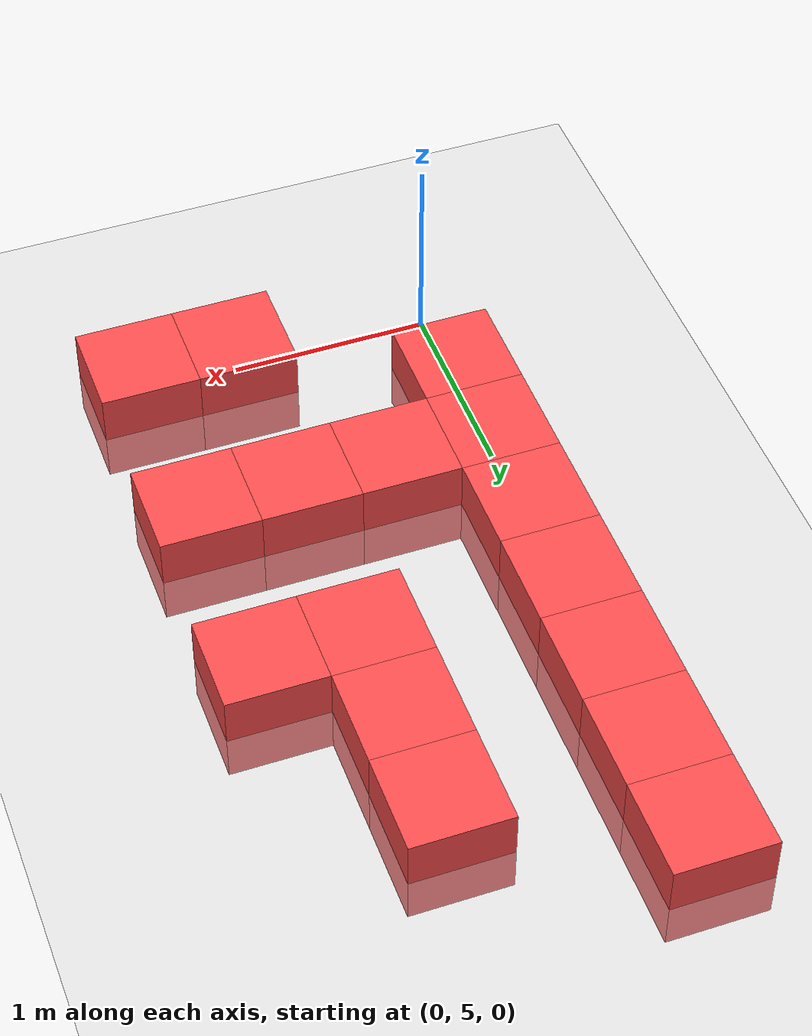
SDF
<sdf version="1.6">
 <world name="default">
  <model name="ground_plane">
   <static>1</static>
   <link name="link">
    <collision name="collision">
     <geometry><plane><normal>0 0 1</normal><size>100 100</size></plane></geometry>
     <surface><friction><ode><mu>100</mu><mu2>50</mu2></ode></friction></surface>
    </collision>
    <visual name="visual">
     <cast_shadows>0</cast_shadows>
     <geometry><plane><normal>0 0 1</normal><size>100 100</size></plane></geometry>
     <material>
      <script><uri>file://media/materials/scripts/gazebo.material</uri><name>Gazebo/Grey</name></script>
     </material>
    </visual>
   </link>
  </model>
  <model name="Box_Red_11">
   <link name="link_0">
    <inertial>
     <mass>1</mass>
     <inertia>
      <ixx>0.166667</ixx>
      <ixy>0</ixy>
      <ixz>0</ixz>
      <iyy>0.166667</iyy>
      <iyz>0</iyz>
      <izz>0.166667</izz>
     </inertia>
    </inertial>
    <visual name="visual">
     <geometry><box><size>0.5 0.5 0.5</size></box></geometry>
     <material>
      <lighting>1</lighting>
      <script><uri>file://media/materials/scripts/gazebo.material</uri><name>Gazebo/Grey</name></script>
      <ambient>1 0.3 0.3 1</ambient>
      <diffuse>0.7 0.7 0.7 1</diffuse>
      <specular>0.01 0.01 0.01 1</specular>
      <emissive>0 0 0 1</emissive>
      <shader type="vertex"><normal_map>__default__</normal_map></shader>
     </material>
    </visual>
    <collision name="collision">
     <geometry><box><size>0.5 0.5 0.5</size></box></geometry>
     <surface>
      <friction>
       <ode><mu>1</mu><mu2>1</mu2><fdir1>0 0 0</fdir1><slip1>0</slip1><slip2>0</slip2></ode>
       <torsional>
        <coefficient>1</coefficient>
        <patch_radius>0</patch_radius>
        <surface_radius>0</surface_radius>
        <use_patch_radius>1</use_patch_radius>
        <ode><slip>0</slip></ode>
       </torsional>
      </friction>
      <bounce><restitution_coefficient>0</restitution_coefficient><threshold>1e+06</threshold></bounce>
      <contact>
       <collide_without_contact>0</collide_without_contact>
       <collide_without_contact_bitmask>1</collide_without_contact_bitmask>
       <collide_bitmask>1</collide_bitmask>
       <ode>
        <soft_cfm>0</soft_cfm>
        <soft_erp>0.2</soft_erp>
        <kp>1e+13</kp>
        <kd>1</kd>
        <max_vel>0.01</max_vel>
        <min_depth>0</min_depth>
       </ode>
       <bullet>
        <split_impulse>1</split_impulse>
        <split_impulse_penetration_threshold>-0.01</split_impulse_penetration_threshold>
        <soft_cfm>0</soft_cfm>
        <soft_erp>0.2</soft_erp>
        <kp>1e+13</kp>
        <kd>1</kd>
       </bullet>
      </contact>
     </surface>
    </collision>
   </link>
   <static>0</static>
   <pose>0.000 5.500 0.000 0 0 0</pose>
  </model>
  <model name="Box_Red_12">
   <link name="link_0">
    <inertial>
     <mass>1</mass>
     <inertia>
      <ixx>0.166667</ixx>
      <ixy>0</ixy>
      <ixz>0</ixz>
      <iyy>0.166667</iyy>
      <iyz>0</iyz>
      <izz>0.166667</izz>
     </inertia>
    </inertial>
    <visual name="visual">
     <geometry><box><size>0.5 0.5 0.5</size></box></geometry>
     <material>
      <lighting>1</lighting>
      <script><uri>file://media/materials/scripts/gazebo.material</uri><name>Gazebo/Grey</name></script>
      <ambient>1 0.3 0.3 1</ambient>
      <diffuse>0.7 0.7 0.7 1</diffuse>
      <specular>0.01 0.01 0.01 1</specular>
      <emissive>0 0 0 1</emissive>
      <shader type="vertex"><normal_map>__default__</normal_map></shader>
     </material>
    </visual>
    <collision name="collision">
     <geometry><box><size>0.5 0.5 0.5</size></box></geometry>
     <surface>
      <friction>
       <ode><mu>1</mu><mu2>1</mu2><fdir1>0 0 0</fdir1><slip1>0</slip1><slip2>0</slip2></ode>
       <torsional>
        <coefficient>1</coefficient>
        <patch_radius>0</patch_radius>
        <surface_radius>0</surface_radius>
        <use_patch_radius>1</use_patch_radius>
        <ode><slip>0</slip></ode>
       </torsional>
      </friction>
      <bounce><restitution_coefficient>0</restitution_coefficient><threshold>1e+06</threshold></bounce>
      <contact>
       <collide_without_contact>0</collide_without_contact>
       <collide_without_contact_bitmask>1</collide_without_contact_bitmask>
       <collide_bitmask>1</collide_bitmask>
       <ode>
        <soft_cfm>0</soft_cfm>
        <soft_erp>0.2</soft_erp>
        <kp>1e+13</kp>
        <kd>1</kd>
        <max_vel>0.01</max_vel>
        <min_depth>0</min_depth>
       </ode>
       <bullet>
        <split_impulse>1</split_impulse>
        <split_impulse_penetration_threshold>-0.01</split_impulse_penetration_threshold>
        <soft_cfm>0</soft_cfm>
        <soft_erp>0.2</soft_erp>
        <kp>1e+13</kp>
        <kd>1</kd>
       </bullet>
      </contact>
     </surface>
    </collision>
   </link>
   <static>0</static>
   <pose>0.000 6.000 0.000 0 0 0</pose>
  </model>
  <model name="Box_Red_13">
   <link name="link_0">
    <inertial>
     <mass>1</mass>
     <inertia>
      <ixx>0.166667</ixx>
      <ixy>0</ixy>
      <ixz>0</ixz>
      <iyy>0.166667</iyy>
      <iyz>0</iyz>
      <izz>0.166667</izz>
     </inertia>
    </inertial>
    <visual name="visual">
     <geometry><box><size>0.5 0.5 0.5</size></box></geometry>
     <material>
      <lighting>1</lighting>
      <script><uri>file://media/materials/scripts/gazebo.material</uri><name>Gazebo/Grey</name></script>
      <ambient>1 0.3 0.3 1</ambient>
      <diffuse>0.7 0.7 0.7 1</diffuse>
      <specular>0.01 0.01 0.01 1</specular>
      <emissive>0 0 0 1</emissive>
      <shader type="vertex"><normal_map>__default__</normal_map></shader>
     </material>
    </visual>
    <collision name="collision">
     <geometry><box><size>0.5 0.5 0.5</size></box></geometry>
     <surface>
      <friction>
       <ode><mu>1</mu><mu2>1</mu2><fdir1>0 0 0</fdir1><slip1>0</slip1><slip2>0</slip2></ode>
       <torsional>
        <coefficient>1</coefficient>
        <patch_radius>0</patch_radius>
        <surface_radius>0</surface_radius>
        <use_patch_radius>1</use_patch_radius>
        <ode><slip>0</slip></ode>
       </torsional>
      </friction>
      <bounce><restitution_coefficient>0</restitution_coefficient><threshold>1e+06</threshold></bounce>
      <contact>
       <collide_without_contact>0</collide_without_contact>
       <collide_without_contact_bitmask>1</collide_without_contact_bitmask>
       <collide_bitmask>1</collide_bitmask>
       <ode>
        <soft_cfm>0</soft_cfm>
        <soft_erp>0.2</soft_erp>
        <kp>1e+13</kp>
        <kd>1</kd>
        <max_vel>0.01</max_vel>
        <min_depth>0</min_depth>
       </ode>
       <bullet>
        <split_impulse>1</split_impulse>
        <split_impulse_penetration_threshold>-0.01</split_impulse_penetration_threshold>
        <soft_cfm>0</soft_cfm>
        <soft_erp>0.2</soft_erp>
        <kp>1e+13</kp>
        <kd>1</kd>
       </bullet>
      </contact>
     </surface>
    </collision>
   </link>
   <static>0</static>
   <pose>0.000 6.500 0.000 0 0 0</pose>
  </model>
  <model name="Box_Red_14">
   <link name="link_0">
    <inertial>
     <mass>1</mass>
     <inertia>
      <ixx>0.166667</ixx>
      <ixy>0</ixy>
      <ixz>0</ixz>
      <iyy>0.166667</iyy>
      <iyz>0</iyz>
      <izz>0.166667</izz>
     </inertia>
    </inertial>
    <visual name="visual">
     <geometry><box><size>0.5 0.5 0.5</size></box></geometry>
     <material>
      <lighting>1</lighting>
      <script><uri>file://media/materials/scripts/gazebo.material</uri><name>Gazebo/Grey</name></script>
      <ambient>1 0.3 0.3 1</ambient>
      <diffuse>0.7 0.7 0.7 1</diffuse>
      <specular>0.01 0.01 0.01 1</specular>
      <emissive>0 0 0 1</emissive>
      <shader type="vertex"><normal_map>__default__</normal_map></shader>
     </material>
    </visual>
    <collision name="collision">
     <geometry><box><size>0.5 0.5 0.5</size></box></geometry>
     <surface>
      <friction>
       <ode><mu>1</mu><mu2>1</mu2><fdir1>0 0 0</fdir1><slip1>0</slip1><slip2>0</slip2></ode>
       <torsional>
        <coefficient>1</coefficient>
        <patch_radius>0</patch_radius>
        <surface_radius>0</surface_radius>
        <use_patch_radius>1</use_patch_radius>
        <ode><slip>0</slip></ode>
       </torsional>
      </friction>
      <bounce><restitution_coefficient>0</restitution_coefficient><threshold>1e+06</threshold></bounce>
      <contact>
       <collide_without_contact>0</collide_without_contact>
       <collide_without_contact_bitmask>1</collide_without_contact_bitmask>
       <collide_bitmask>1</collide_bitmask>
       <ode>
        <soft_cfm>0</soft_cfm>
        <soft_erp>0.2</soft_erp>
        <kp>1e+13</kp>
        <kd>1</kd>
        <max_vel>0.01</max_vel>
        <min_depth>0</min_depth>
       </ode>
       <bullet>
        <split_impulse>1</split_impulse>
        <split_impulse_penetration_threshold>-0.01</split_impulse_penetration_threshold>
        <soft_cfm>0</soft_cfm>
        <soft_erp>0.2</soft_erp>
        <kp>1e+13</kp>
        <kd>1</kd>
       </bullet>
      </contact>
     </surface>
    </collision>
   </link>
   <static>0</static>
   <pose>0.000 7.000 0.000 0 0 0</pose>
  </model>
  <model name="Box_Red_15">
   <link name="link_0">
    <inertial>
     <mass>1</mass>
     <inertia>
      <ixx>0.166667</ixx>
      <ixy>0</ixy>
      <ixz>0</ixz>
      <iyy>0.166667</iyy>
      <iyz>0</iyz>
      <izz>0.166667</izz>
     </inertia>
    </inertial>
    <visual name="visual">
     <geometry><box><size>0.5 0.5 0.5</size></box></geometry>
     <material>
      <lighting>1</lighting>
      <script><uri>file://media/materials/scripts/gazebo.material</uri><name>Gazebo/Grey</name></script>
      <ambient>1 0.3 0.3 1</ambient>
      <diffuse>0.7 0.7 0.7 1</diffuse>
      <specular>0.01 0.01 0.01 1</specular>
      <emissive>0 0 0 1</emissive>
      <shader type="vertex"><normal_map>__default__</normal_map></shader>
     </material>
    </visual>
    <collision name="collision">
     <geometry><box><size>0.5 0.5 0.5</size></box></geometry>
     <surface>
      <friction>
       <ode><mu>1</mu><mu2>1</mu2><fdir1>0 0 0</fdir1><slip1>0</slip1><slip2>0</slip2></ode>
       <torsional>
        <coefficient>1</coefficient>
        <patch_radius>0</patch_radius>
        <surface_radius>0</surface_radius>
        <use_patch_radius>1</use_patch_radius>
        <ode><slip>0</slip></ode>
       </torsional>
      </friction>
      <bounce><restitution_coefficient>0</restitution_coefficient><threshold>1e+06</threshold></bounce>
      <contact>
       <collide_without_contact>0</collide_without_contact>
       <collide_without_contact_bitmask>1</collide_without_contact_bitmask>
       <collide_bitmask>1</collide_bitmask>
       <ode>
        <soft_cfm>0</soft_cfm>
        <soft_erp>0.2</soft_erp>
        <kp>1e+13</kp>
        <kd>1</kd>
        <max_vel>0.01</max_vel>
        <min_depth>0</min_depth>
       </ode>
       <bullet>
        <split_impulse>1</split_impulse>
        <split_impulse_penetration_threshold>-0.01</split_impulse_penetration_threshold>
        <soft_cfm>0</soft_cfm>
        <soft_erp>0.2</soft_erp>
        <kp>1e+13</kp>
        <kd>1</kd>
       </bullet>
      </contact>
     </surface>
    </collision>
   </link>
   <static>0</static>
   <pose>0.000 7.500 0.000 0 0 0</pose>
  </model>
  <model name="Box_Red_16">
   <link name="link_0">
    <inertial>
     <mass>1</mass>
     <inertia>
      <ixx>0.166667</ixx>
      <ixy>0</ixy>
      <ixz>0</ixz>
      <iyy>0.166667</iyy>
      <iyz>0</iyz>
      <izz>0.166667</izz>
     </inertia>
    </inertial>
    <visual name="visual">
     <geometry><box><size>0.5 0.5 0.5</size></box></geometry>
     <material>
      <lighting>1</lighting>
      <script><uri>file://media/materials/scripts/gazebo.material</uri><name>Gazebo/Grey</name></script>
      <ambient>1 0.3 0.3 1</ambient>
      <diffuse>0.7 0.7 0.7 1</diffuse>
      <specular>0.01 0.01 0.01 1</specular>
      <emissive>0 0 0 1</emissive>
      <shader type="vertex"><normal_map>__default__</normal_map></shader>
     </material>
    </visual>
    <collision name="collision">
     <geometry><box><size>0.5 0.5 0.5</size></box></geometry>
     <surface>
      <friction>
       <ode><mu>1</mu><mu2>1</mu2><fdir1>0 0 0</fdir1><slip1>0</slip1><slip2>0</slip2></ode>
       <torsional>
        <coefficient>1</coefficient>
        <patch_radius>0</patch_radius>
        <surface_radius>0</surface_radius>
        <use_patch_radius>1</use_patch_radius>
        <ode><slip>0</slip></ode>
       </torsional>
      </friction>
      <bounce><restitution_coefficient>0</restitution_coefficient><threshold>1e+06</threshold></bounce>
      <contact>
       <collide_without_contact>0</collide_without_contact>
       <collide_without_contact_bitmask>1</collide_without_contact_bitmask>
       <collide_bitmask>1</collide_bitmask>
       <ode>
        <soft_cfm>0</soft_cfm>
        <soft_erp>0.2</soft_erp>
        <kp>1e+13</kp>
        <kd>1</kd>
        <max_vel>0.01</max_vel>
        <min_depth>0</min_depth>
       </ode>
       <bullet>
        <split_impulse>1</split_impulse>
        <split_impulse_penetration_threshold>-0.01</split_impulse_penetration_threshold>
        <soft_cfm>0</soft_cfm>
        <soft_erp>0.2</soft_erp>
        <kp>1e+13</kp>
        <kd>1</kd>
       </bullet>
      </contact>
     </surface>
    </collision>
   </link>
   <static>0</static>
   <pose>0.000 8.000 0.000 0 0 0</pose>
  </model>
  <model name="Box_Red_17">
   <link name="link_0">
    <inertial>
     <mass>1</mass>
     <inertia>
      <ixx>0.166667</ixx>
      <ixy>0</ixy>
      <ixz>0</ixz>
      <iyy>0.166667</iyy>
      <iyz>0</iyz>
      <izz>0.166667</izz>
     </inertia>
    </inertial>
    <visual name="visual">
     <geometry><box><size>0.5 0.5 0.5</size></box></geometry>
     <material>
      <lighting>1</lighting>
      <script><uri>file://media/materials/scripts/gazebo.material</uri><name>Gazebo/Grey</name></script>
      <ambient>1 0.3 0.3 1</ambient>
      <diffuse>0.7 0.7 0.7 1</diffuse>
      <specular>0.01 0.01 0.01 1</specular>
      <emissive>0 0 0 1</emissive>
      <shader type="vertex"><normal_map>__default__</normal_map></shader>
     </material>
    </visual>
    <collision name="collision">
     <geometry><box><size>0.5 0.5 0.5</size></box></geometry>
     <surface>
      <friction>
       <ode><mu>1</mu><mu2>1</mu2><fdir1>0 0 0</fdir1><slip1>0</slip1><slip2>0</slip2></ode>
       <torsional>
        <coefficient>1</coefficient>
        <patch_radius>0</patch_radius>
        <surface_radius>0</surface_radius>
        <use_patch_radius>1</use_patch_radius>
        <ode><slip>0</slip></ode>
       </torsional>
      </friction>
      <bounce><restitution_coefficient>0</restitution_coefficient><threshold>1e+06</threshold></bounce>
      <contact>
       <collide_without_contact>0</collide_without_contact>
       <collide_without_contact_bitmask>1</collide_without_contact_bitmask>
       <collide_bitmask>1</collide_bitmask>
       <ode>
        <soft_cfm>0</soft_cfm>
        <soft_erp>0.2</soft_erp>
        <kp>1e+13</kp>
        <kd>1</kd>
        <max_vel>0.01</max_vel>
        <min_depth>0</min_depth>
       </ode>
       <bullet>
        <split_impulse>1</split_impulse>
        <split_impulse_penetration_threshold>-0.01</split_impulse_penetration_threshold>
        <soft_cfm>0</soft_cfm>
        <soft_erp>0.2</soft_erp>
        <kp>1e+13</kp>
        <kd>1</kd>
       </bullet>
      </contact>
     </surface>
    </collision>
   </link>
   <static>0</static>
   <pose>0.000 8.500 0.000 0 0 0</pose>
  </model>
  <model name="Box_Red_37">
   <link name="link_0">
    <inertial>
     <mass>1</mass>
     <inertia>
      <ixx>0.166667</ixx>
      <ixy>0</ixy>
      <ixz>0</ixz>
      <iyy>0.166667</iyy>
      <iyz>0</iyz>
      <izz>0.166667</izz>
     </inertia>
    </inertial>
    <visual name="visual">
     <geometry><box><size>0.5 0.5 0.5</size></box></geometry>
     <material>
      <lighting>1</lighting>
      <script><uri>file://media/materials/scripts/gazebo.material</uri><name>Gazebo/Grey</name></script>
      <ambient>1 0.3 0.3 1</ambient>
      <diffuse>0.7 0.7 0.7 1</diffuse>
      <specular>0.01 0.01 0.01 1</specular>
      <emissive>0 0 0 1</emissive>
      <shader type="vertex"><normal_map>__default__</normal_map></shader>
     </material>
    </visual>
    <collision name="collision">
     <geometry><box><size>0.5 0.5 0.5</size></box></geometry>
     <surface>
      <friction>
       <ode><mu>1</mu><mu2>1</mu2><fdir1>0 0 0</fdir1><slip1>0</slip1><slip2>0</slip2></ode>
       <torsional>
        <coefficient>1</coefficient>
        <patch_radius>0</patch_radius>
        <surface_radius>0</surface_radius>
        <use_patch_radius>1</use_patch_radius>
        <ode><slip>0</slip></ode>
       </torsional>
      </friction>
      <bounce><restitution_coefficient>0</restitution_coefficient><threshold>1e+06</threshold></bounce>
      <contact>
       <collide_without_contact>0</collide_without_contact>
       <collide_without_contact_bitmask>1</collide_without_contact_bitmask>
       <collide_bitmask>1</collide_bitmask>
       <ode>
        <soft_cfm>0</soft_cfm>
        <soft_erp>0.2</soft_erp>
        <kp>1e+13</kp>
        <kd>1</kd>
        <max_vel>0.01</max_vel>
        <min_depth>0</min_depth>
       </ode>
       <bullet>
        <split_impulse>1</split_impulse>
        <split_impulse_penetration_threshold>-0.01</split_impulse_penetration_threshold>
        <soft_cfm>0</soft_cfm>
        <soft_erp>0.2</soft_erp>
        <kp>1e+13</kp>
        <kd>1</kd>
       </bullet>
      </contact>
     </surface>
    </collision>
   </link>
   <static>0</static>
   <pose>0.500 6.000 0.000 0 0 0</pose>
  </model>
  <model name="Box_Red_60">
   <link name="link_0">
    <inertial>
     <mass>1</mass>
     <inertia>
      <ixx>0.166667</ixx>
      <ixy>0</ixy>
      <ixz>0</ixz>
      <iyy>0.166667</iyy>
      <iyz>0</iyz>
      <izz>0.166667</izz>
     </inertia>
    </inertial>
    <visual name="visual">
     <geometry><box><size>0.5 0.5 0.5</size></box></geometry>
     <material>
      <lighting>1</lighting>
      <script><uri>file://media/materials/scripts/gazebo.material</uri><name>Gazebo/Grey</name></script>
      <ambient>1 0.3 0.3 1</ambient>
      <diffuse>0.7 0.7 0.7 1</diffuse>
      <specular>0.01 0.01 0.01 1</specular>
      <emissive>0 0 0 1</emissive>
      <shader type="vertex"><normal_map>__default__</normal_map></shader>
     </material>
    </visual>
    <collision name="collision">
     <geometry><box><size>0.5 0.5 0.5</size></box></geometry>
     <surface>
      <friction>
       <ode><mu>1</mu><mu2>1</mu2><fdir1>0 0 0</fdir1><slip1>0</slip1><slip2>0</slip2></ode>
       <torsional>
        <coefficient>1</coefficient>
        <patch_radius>0</patch_radius>
        <surface_radius>0</surface_radius>
        <use_patch_radius>1</use_patch_radius>
        <ode><slip>0</slip></ode>
       </torsional>
      </friction>
      <bounce><restitution_coefficient>0</restitution_coefficient><threshold>1e+06</threshold></bounce>
      <contact>
       <collide_without_contact>0</collide_without_contact>
       <collide_without_contact_bitmask>1</collide_without_contact_bitmask>
       <collide_bitmask>1</collide_bitmask>
       <ode>
        <soft_cfm>0</soft_cfm>
        <soft_erp>0.2</soft_erp>
        <kp>1e+13</kp>
        <kd>1</kd>
        <max_vel>0.01</max_vel>
        <min_depth>0</min_depth>
       </ode>
       <bullet>
        <split_impulse>1</split_impulse>
        <split_impulse_penetration_threshold>-0.01</split_impulse_penetration_threshold>
        <soft_cfm>0</soft_cfm>
        <soft_erp>0.2</soft_erp>
        <kp>1e+13</kp>
        <kd>1</kd>
       </bullet>
      </contact>
     </surface>
    </collision>
   </link>
   <static>0</static>
   <pose>1.000 5.000 0.000 0 0 0</pose>
  </model>
  <model name="Box_Red_62">
   <link name="link_0">
    <inertial>
     <mass>1</mass>
     <inertia>
      <ixx>0.166667</ixx>
      <ixy>0</ixy>
      <ixz>0</ixz>
      <iyy>0.166667</iyy>
      <iyz>0</iyz>
      <izz>0.166667</izz>
     </inertia>
    </inertial>
    <visual name="visual">
     <geometry><box><size>0.5 0.5 0.5</size></box></geometry>
     <material>
      <lighting>1</lighting>
      <script><uri>file://media/materials/scripts/gazebo.material</uri><name>Gazebo/Grey</name></script>
      <ambient>1 0.3 0.3 1</ambient>
      <diffuse>0.7 0.7 0.7 1</diffuse>
      <specular>0.01 0.01 0.01 1</specular>
      <emissive>0 0 0 1</emissive>
      <shader type="vertex"><normal_map>__default__</normal_map></shader>
     </material>
    </visual>
    <collision name="collision">
     <geometry><box><size>0.5 0.5 0.5</size></box></geometry>
     <surface>
      <friction>
       <ode><mu>1</mu><mu2>1</mu2><fdir1>0 0 0</fdir1><slip1>0</slip1><slip2>0</slip2></ode>
       <torsional>
        <coefficient>1</coefficient>
        <patch_radius>0</patch_radius>
        <surface_radius>0</surface_radius>
        <use_patch_radius>1</use_patch_radius>
        <ode><slip>0</slip></ode>
       </torsional>
      </friction>
      <bounce><restitution_coefficient>0</restitution_coefficient><threshold>1e+06</threshold></bounce>
      <contact>
       <collide_without_contact>0</collide_without_contact>
       <collide_without_contact_bitmask>1</collide_without_contact_bitmask>
       <collide_bitmask>1</collide_bitmask>
       <ode>
        <soft_cfm>0</soft_cfm>
        <soft_erp>0.2</soft_erp>
        <kp>1e+13</kp>
        <kd>1</kd>
        <max_vel>0.01</max_vel>
        <min_depth>0</min_depth>
       </ode>
       <bullet>
        <split_impulse>1</split_impulse>
        <split_impulse_penetration_threshold>-0.01</split_impulse_penetration_threshold>
        <soft_cfm>0</soft_cfm>
        <soft_erp>0.2</soft_erp>
        <kp>1e+13</kp>
        <kd>1</kd>
       </bullet>
      </contact>
     </surface>
    </collision>
   </link>
   <static>0</static>
   <pose>1.000 6.000 0.000 0 0 0</pose>
  </model>
  <model name="Box_Red_64">
   <link name="link_0">
    <inertial>
     <mass>1</mass>
     <inertia>
      <ixx>0.166667</ixx>
      <ixy>0</ixy>
      <ixz>0</ixz>
      <iyy>0.166667</iyy>
      <iyz>0</iyz>
      <izz>0.166667</izz>
     </inertia>
    </inertial>
    <visual name="visual">
     <geometry><box><size>0.5 0.5 0.5</size></box></geometry>
     <material>
      <lighting>1</lighting>
      <script><uri>file://media/materials/scripts/gazebo.material</uri><name>Gazebo/Grey</name></script>
      <ambient>1 0.3 0.3 1</ambient>
      <diffuse>0.7 0.7 0.7 1</diffuse>
      <specular>0.01 0.01 0.01 1</specular>
      <emissive>0 0 0 1</emissive>
      <shader type="vertex"><normal_map>__default__</normal_map></shader>
     </material>
    </visual>
    <collision name="collision">
     <geometry><box><size>0.5 0.5 0.5</size></box></geometry>
     <surface>
      <friction>
       <ode><mu>1</mu><mu2>1</mu2><fdir1>0 0 0</fdir1><slip1>0</slip1><slip2>0</slip2></ode>
       <torsional>
        <coefficient>1</coefficient>
        <patch_radius>0</patch_radius>
        <surface_radius>0</surface_radius>
        <use_patch_radius>1</use_patch_radius>
        <ode><slip>0</slip></ode>
       </torsional>
      </friction>
      <bounce><restitution_coefficient>0</restitution_coefficient><threshold>1e+06</threshold></bounce>
      <contact>
       <collide_without_contact>0</collide_without_contact>
       <collide_without_contact_bitmask>1</collide_without_contact_bitmask>
       <collide_bitmask>1</collide_bitmask>
       <ode>
        <soft_cfm>0</soft_cfm>
        <soft_erp>0.2</soft_erp>
        <kp>1e+13</kp>
        <kd>1</kd>
        <max_vel>0.01</max_vel>
        <min_depth>0</min_depth>
       </ode>
       <bullet>
        <split_impulse>1</split_impulse>
        <split_impulse_penetration_threshold>-0.01</split_impulse_penetration_threshold>
        <soft_cfm>0</soft_cfm>
        <soft_erp>0.2</soft_erp>
        <kp>1e+13</kp>
        <kd>1</kd>
       </bullet>
      </contact>
     </surface>
    </collision>
   </link>
   <static>0</static>
   <pose>1.000 7.000 0.000 0 0 0</pose>
  </model>
  <model name="Box_Red_65">
   <link name="link_0">
    <inertial>
     <mass>1</mass>
     <inertia>
      <ixx>0.166667</ixx>
      <ixy>0</ixy>
      <ixz>0</ixz>
      <iyy>0.166667</iyy>
      <iyz>0</iyz>
      <izz>0.166667</izz>
     </inertia>
    </inertial>
    <visual name="visual">
     <geometry><box><size>0.5 0.5 0.5</size></box></geometry>
     <material>
      <lighting>1</lighting>
      <script><uri>file://media/materials/scripts/gazebo.material</uri><name>Gazebo/Grey</name></script>
      <ambient>1 0.3 0.3 1</ambient>
      <diffuse>0.7 0.7 0.7 1</diffuse>
      <specular>0.01 0.01 0.01 1</specular>
      <emissive>0 0 0 1</emissive>
      <shader type="vertex"><normal_map>__default__</normal_map></shader>
     </material>
    </visual>
    <collision name="collision">
     <geometry><box><size>0.5 0.5 0.5</size></box></geometry>
     <surface>
      <friction>
       <ode><mu>1</mu><mu2>1</mu2><fdir1>0 0 0</fdir1><slip1>0</slip1><slip2>0</slip2></ode>
       <torsional>
        <coefficient>1</coefficient>
        <patch_radius>0</patch_radius>
        <surface_radius>0</surface_radius>
        <use_patch_radius>1</use_patch_radius>
        <ode><slip>0</slip></ode>
       </torsional>
      </friction>
      <bounce><restitution_coefficient>0</restitution_coefficient><threshold>1e+06</threshold></bounce>
      <contact>
       <collide_without_contact>0</collide_without_contact>
       <collide_without_contact_bitmask>1</collide_without_contact_bitmask>
       <collide_bitmask>1</collide_bitmask>
       <ode>
        <soft_cfm>0</soft_cfm>
        <soft_erp>0.2</soft_erp>
        <kp>1e+13</kp>
        <kd>1</kd>
        <max_vel>0.01</max_vel>
        <min_depth>0</min_depth>
       </ode>
       <bullet>
        <split_impulse>1</split_impulse>
        <split_impulse_penetration_threshold>-0.01</split_impulse_penetration_threshold>
        <soft_cfm>0</soft_cfm>
        <soft_erp>0.2</soft_erp>
        <kp>1e+13</kp>
        <kd>1</kd>
       </bullet>
      </contact>
     </surface>
    </collision>
   </link>
   <static>0</static>
   <pose>1.000 7.500 0.000 0 0 0</pose>
  </model>
  <model name="Box_Red_66">
   <link name="link_0">
    <inertial>
     <mass>1</mass>
     <inertia>
      <ixx>0.166667</ixx>
      <ixy>0</ixy>
      <ixz>0</ixz>
      <iyy>0.166667</iyy>
      <iyz>0</iyz>
      <izz>0.166667</izz>
     </inertia>
    </inertial>
    <visual name="visual">
     <geometry><box><size>0.5 0.5 0.5</size></box></geometry>
     <material>
      <lighting>1</lighting>
      <script><uri>file://media/materials/scripts/gazebo.material</uri><name>Gazebo/Grey</name></script>
      <ambient>1 0.3 0.3 1</ambient>
      <diffuse>0.7 0.7 0.7 1</diffuse>
      <specular>0.01 0.01 0.01 1</specular>
      <emissive>0 0 0 1</emissive>
      <shader type="vertex"><normal_map>__default__</normal_map></shader>
     </material>
    </visual>
    <collision name="collision">
     <geometry><box><size>0.5 0.5 0.5</size></box></geometry>
     <surface>
      <friction>
       <ode><mu>1</mu><mu2>1</mu2><fdir1>0 0 0</fdir1><slip1>0</slip1><slip2>0</slip2></ode>
       <torsional>
        <coefficient>1</coefficient>
        <patch_radius>0</patch_radius>
        <surface_radius>0</surface_radius>
        <use_patch_radius>1</use_patch_radius>
        <ode><slip>0</slip></ode>
       </torsional>
      </friction>
      <bounce><restitution_coefficient>0</restitution_coefficient><threshold>1e+06</threshold></bounce>
      <contact>
       <collide_without_contact>0</collide_without_contact>
       <collide_without_contact_bitmask>1</collide_without_contact_bitmask>
       <collide_bitmask>1</collide_bitmask>
       <ode>
        <soft_cfm>0</soft_cfm>
        <soft_erp>0.2</soft_erp>
        <kp>1e+13</kp>
        <kd>1</kd>
        <max_vel>0.01</max_vel>
        <min_depth>0</min_depth>
       </ode>
       <bullet>
        <split_impulse>1</split_impulse>
        <split_impulse_penetration_threshold>-0.01</split_impulse_penetration_threshold>
        <soft_cfm>0</soft_cfm>
        <soft_erp>0.2</soft_erp>
        <kp>1e+13</kp>
        <kd>1</kd>
       </bullet>
      </contact>
     </surface>
    </collision>
   </link>
   <static>0</static>
   <pose>1.000 8.000 0.000 0 0 0</pose>
  </model>
  <model name="Box_Red_85">
   <link name="link_0">
    <inertial>
     <mass>1</mass>
     <inertia>
      <ixx>0.166667</ixx>
      <ixy>0</ixy>
      <ixz>0</ixz>
      <iyy>0.166667</iyy>
      <iyz>0</iyz>
      <izz>0.166667</izz>
     </inertia>
    </inertial>
    <visual name="visual">
     <geometry><box><size>0.5 0.5 0.5</size></box></geometry>
     <material>
      <lighting>1</lighting>
      <script><uri>file://media/materials/scripts/gazebo.material</uri><name>Gazebo/Grey</name></script>
      <ambient>1 0.3 0.3 1</ambient>
      <diffuse>0.7 0.7 0.7 1</diffuse>
      <specular>0.01 0.01 0.01 1</specular>
      <emissive>0 0 0 1</emissive>
      <shader type="vertex"><normal_map>__default__</normal_map></shader>
     </material>
    </visual>
    <collision name="collision">
     <geometry><box><size>0.5 0.5 0.5</size></box></geometry>
     <surface>
      <friction>
       <ode><mu>1</mu><mu2>1</mu2><fdir1>0 0 0</fdir1><slip1>0</slip1><slip2>0</slip2></ode>
       <torsional>
        <coefficient>1</coefficient>
        <patch_radius>0</patch_radius>
        <surface_radius>0</surface_radius>
        <use_patch_radius>1</use_patch_radius>
        <ode><slip>0</slip></ode>
       </torsional>
      </friction>
      <bounce><restitution_coefficient>0</restitution_coefficient><threshold>1e+06</threshold></bounce>
      <contact>
       <collide_without_contact>0</collide_without_contact>
       <collide_without_contact_bitmask>1</collide_without_contact_bitmask>
       <collide_bitmask>1</collide_bitmask>
       <ode>
        <soft_cfm>0</soft_cfm>
        <soft_erp>0.2</soft_erp>
        <kp>1e+13</kp>
        <kd>1</kd>
        <max_vel>0.01</max_vel>
        <min_depth>0</min_depth>
       </ode>
       <bullet>
        <split_impulse>1</split_impulse>
        <split_impulse_penetration_threshold>-0.01</split_impulse_penetration_threshold>
        <soft_cfm>0</soft_cfm>
        <soft_erp>0.2</soft_erp>
        <kp>1e+13</kp>
        <kd>1</kd>
       </bullet>
      </contact>
     </surface>
    </collision>
   </link>
   <static>0</static>
   <pose>1.500 5.000 0.000 0 0 0</pose>
  </model>
  <model name="Box_Red_87">
   <link name="link_0">
    <inertial>
     <mass>1</mass>
     <inertia>
      <ixx>0.166667</ixx>
      <ixy>0</ixy>
      <ixz>0</ixz>
      <iyy>0.166667</iyy>
      <iyz>0</iyz>
      <izz>0.166667</izz>
     </inertia>
    </inertial>
    <visual name="visual">
     <geometry><box><size>0.5 0.5 0.5</size></box></geometry>
     <material>
      <lighting>1</lighting>
      <script><uri>file://media/materials/scripts/gazebo.material</uri><name>Gazebo/Grey</name></script>
      <ambient>1 0.3 0.3 1</ambient>
      <diffuse>0.7 0.7 0.7 1</diffuse>
      <specular>0.01 0.01 0.01 1</specular>
      <emissive>0 0 0 1</emissive>
      <shader type="vertex"><normal_map>__default__</normal_map></shader>
     </material>
    </visual>
    <collision name="collision">
     <geometry><box><size>0.5 0.5 0.5</size></box></geometry>
     <surface>
      <friction>
       <ode><mu>1</mu><mu2>1</mu2><fdir1>0 0 0</fdir1><slip1>0</slip1><slip2>0</slip2></ode>
       <torsional>
        <coefficient>1</coefficient>
        <patch_radius>0</patch_radius>
        <surface_radius>0</surface_radius>
        <use_patch_radius>1</use_patch_radius>
        <ode><slip>0</slip></ode>
       </torsional>
      </friction>
      <bounce><restitution_coefficient>0</restitution_coefficient><threshold>1e+06</threshold></bounce>
      <contact>
       <collide_without_contact>0</collide_without_contact>
       <collide_without_contact_bitmask>1</collide_without_contact_bitmask>
       <collide_bitmask>1</collide_bitmask>
       <ode>
        <soft_cfm>0</soft_cfm>
        <soft_erp>0.2</soft_erp>
        <kp>1e+13</kp>
        <kd>1</kd>
        <max_vel>0.01</max_vel>
        <min_depth>0</min_depth>
       </ode>
       <bullet>
        <split_impulse>1</split_impulse>
        <split_impulse_penetration_threshold>-0.01</split_impulse_penetration_threshold>
        <soft_cfm>0</soft_cfm>
        <soft_erp>0.2</soft_erp>
        <kp>1e+13</kp>
        <kd>1</kd>
       </bullet>
      </contact>
     </surface>
    </collision>
   </link>
   <static>0</static>
   <pose>1.500 6.000 0.000 0 0 0</pose>
  </model>
  <model name="Box_Red_89">
   <link name="link_0">
    <inertial>
     <mass>1</mass>
     <inertia>
      <ixx>0.166667</ixx>
      <ixy>0</ixy>
      <ixz>0</ixz>
      <iyy>0.166667</iyy>
      <iyz>0</iyz>
      <izz>0.166667</izz>
     </inertia>
    </inertial>
    <visual name="visual">
     <geometry><box><size>0.5 0.5 0.5</size></box></geometry>
     <material>
      <lighting>1</lighting>
      <script><uri>file://media/materials/scripts/gazebo.material</uri><name>Gazebo/Grey</name></script>
      <ambient>1 0.3 0.3 1</ambient>
      <diffuse>0.7 0.7 0.7 1</diffuse>
      <specular>0.01 0.01 0.01 1</specular>
      <emissive>0 0 0 1</emissive>
      <shader type="vertex"><normal_map>__default__</normal_map></shader>
     </material>
    </visual>
    <collision name="collision">
     <geometry><box><size>0.5 0.5 0.5</size></box></geometry>
     <surface>
      <friction>
       <ode><mu>1</mu><mu2>1</mu2><fdir1>0 0 0</fdir1><slip1>0</slip1><slip2>0</slip2></ode>
       <torsional>
        <coefficient>1</coefficient>
        <patch_radius>0</patch_radius>
        <surface_radius>0</surface_radius>
        <use_patch_radius>1</use_patch_radius>
        <ode><slip>0</slip></ode>
       </torsional>
      </friction>
      <bounce><restitution_coefficient>0</restitution_coefficient><threshold>1e+06</threshold></bounce>
      <contact>
       <collide_without_contact>0</collide_without_contact>
       <collide_without_contact_bitmask>1</collide_without_contact_bitmask>
       <collide_bitmask>1</collide_bitmask>
       <ode>
        <soft_cfm>0</soft_cfm>
        <soft_erp>0.2</soft_erp>
        <kp>1e+13</kp>
        <kd>1</kd>
        <max_vel>0.01</max_vel>
        <min_depth>0</min_depth>
       </ode>
       <bullet>
        <split_impulse>1</split_impulse>
        <split_impulse_penetration_threshold>-0.01</split_impulse_penetration_threshold>
        <soft_cfm>0</soft_cfm>
        <soft_erp>0.2</soft_erp>
        <kp>1e+13</kp>
        <kd>1</kd>
       </bullet>
      </contact>
     </surface>
    </collision>
   </link>
   <static>0</static>
   <pose>1.500 7.000 0.000 0 0 0</pose>
  </model>
 </world>
</sdf>
